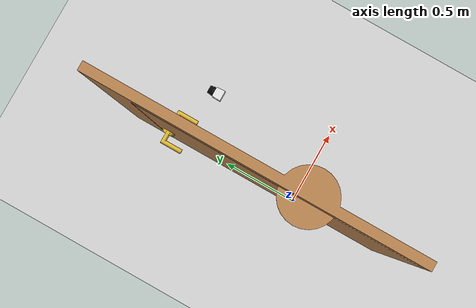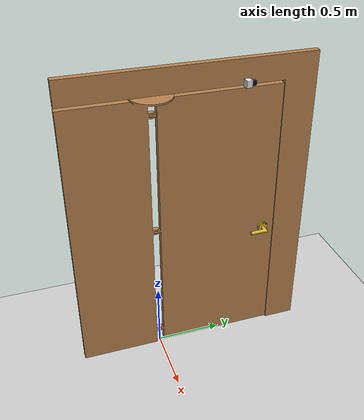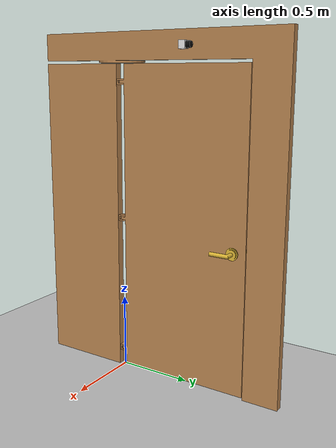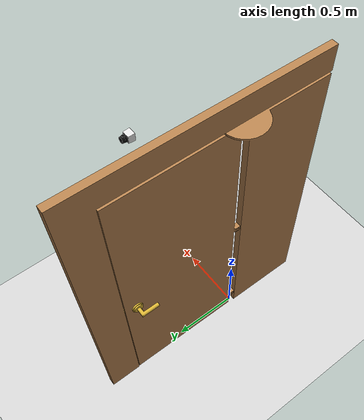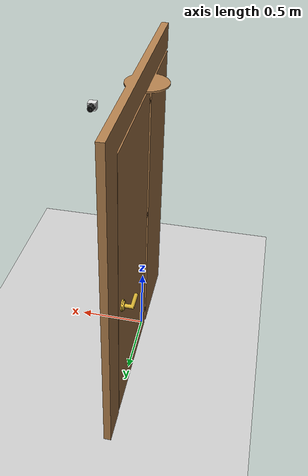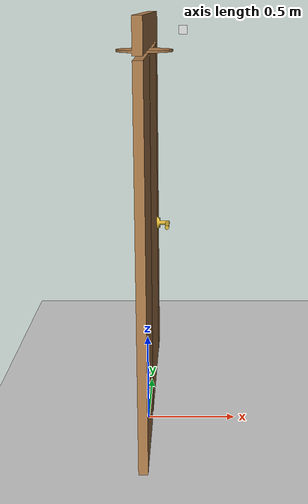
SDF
<?xml version="1.0" ?>
<sdf version="1.4">
  <world name="simple">
    <physics type="ode">
      <gravity>0 0 -9.81</gravity>
      <ode>
        <solver>
          <type>quick</type>
          <iters>200</iters>
          <sor>1.4</sor>
        </solver>
        <constraints>
          <cfm>0.0</cfm>
          <erp>0.2</erp>
          <contact_max_correcting_vel>100.0</contact_max_correcting_vel>
          <contact_surface_layer>0.0</contact_surface_layer>
        </constraints>
      </ode>
      <real_time_update_rate>1500</real_time_update_rate>
      <max_step_size>0.0005</max_step_size>
    </physics>
    <!-- A global light source -->
    <include>
      <uri>model://sun</uri>
    </include>
    <!-- A ground plane -->
    <include>
      <uri>model://ground_plane</uri>
    </include>
    <!-- A door -->
    <include>
      <uri>model://door_simple</uri>
        <plugin name="simple_door_config" filename="./libsimple_door_config.so"/>
    </include>

  </world>
</sdf>

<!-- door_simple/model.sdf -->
<sdf version='1.4'>
  <model name="door_simple">
    <self_collide>true</self_collide>
    <static>false</static>
    <pose>0 0 0 0 0 0</pose>

    <link name="frame">

      <inertial>
        <mass>100.0</mass>
        <inertia>
          <ixx>0.013102127690</ixx>   <ixy>-0.000000514790</ixy>    <ixz>0.000000965200</ixz>
                                      <iyy>0.017339000240</iyy>     <iyz>-0.000017996010</iyz>
                                                                    <izz>0.004334337460</izz>
        </inertia>
      </inertial>

      <collision name="frame_collision">
        <geometry>
          <mesh>
            <uri>model://door_simple/meshes/frame.stl</uri>
          </mesh>
        </geometry>
      </collision>

      <visual name="frame_visual">
        <geometry>
          <mesh>
            <uri>model://door_simple/meshes/frame.stl</uri>
          </mesh>
        </geometry>
        <material>
          <script>
            <uri>file://media/materials/scripts/gazebo.material</uri>
            <name>Gazebo/WoodPallet</name>
          </script>
        </material>
      </visual>

    </link>

    <link name="door">

      <inertial>
        <mass>10.0</mass>
        <inertia>
          <ixx>0.030386862790</ixx>   <ixy>-0.000000000330</ixy>    <ixz>0.000000216760</ixz>
                                      <iyy>0.035534743650</iyy>     <iyz>-0.000000000060</iyz>
                                                                    <izz>0.005184277950</izz>
        </inertia>
      </inertial>

      <collision name="door_collision">
        <geometry>
          <mesh>
            <uri>model://door_simple/meshes/door.stl</uri>
          </mesh>
        </geometry>
      </collision>

      <visual name="door_visual">
        <geometry>
          <mesh>
            <uri>model://door_simple/meshes/door.stl</uri>
          </mesh>
        </geometry>
        <material>
          <script>
            <uri>file://media/materials/scripts/gazebo.material</uri>
            <name>Gazebo/Wood</name>
          </script>
        </material>
      </visual>

    </link>

    <link name="lever">
      <pose> 0 0.84 0.9552 0 -1.5708 0</pose>
      <inertial>
        <mass>1.0</mass>
        <inertia>
          <ixx>0.001</ixx>   <ixy>0.00</ixy>      <ixz>0.00</ixz>
                             <iyy>0.001</iyy>     <iyz>0.00</iyz>
                                                  <izz>0.001</izz>
        </inertia>
      </inertial>

      <collision name="lever_collision">
        <geometry>
          <mesh>
            <uri>model://door_simple/meshes/lever.stl</uri>
          </mesh>
        </geometry>
      </collision>

      <visual name="lever_visual">
        <geometry>
          <mesh>
            <uri>model://door_simple/meshes/lever.stl</uri>
          </mesh>
        </geometry>
        <material>
          <script>
            <uri>file://media/materials/scripts/gazebo.material</uri>
            <name>Gazebo/Gold</name>
          </script>
        </material>
      </visual>

    </link>

    <joint type="fixed" name="joint_world_frame">
      <pose>0 0 0 0 0 0</pose>
      <parent>world</parent>
      <child>frame</child>
      <physics>
        <ode>
          <implicit_spring_damper>1</implicit_spring_damper>
        </ode>
      </physics>
    </joint>

    <joint type="revolute" name="joint_frame_door">
      <pose>0 0 0 0 0 0</pose>
      <parent>frame</parent>
      <child>door</child>
      <axis>
        <xyz>0 0 1</xyz>
        <!--  self-closing hinge -->
        <limit>
          <lower>-0.03</lower>
          <upper>1.57</upper>
        </limit>
      </axis>
      <physics>
        <ode>
          <implicit_spring_damper>1</implicit_spring_damper>
        </ode>
      </physics>
    </joint>

    <joint type="revolute" name="joint_door_lever">
      <pose>0 0 0 0 0 0</pose>
      <parent>door</parent>
      <child>lever</child>
      <axis>
        <xyz>1 0 0</xyz>
        <dynamics>
          <damping>0.5</damping>
          <friction>0.01</friction>
          <spring_reference>0.0</spring_reference>
          <spring_stiffness>3</spring_stiffness>
        </dynamics>
        <limit>
          <lower>0.0</lower>
          <upper>0.6</upper>
        </limit>
      </axis>
      <physics>
        <ode>
          <implicit_spring_damper>1</implicit_spring_damper>
        </ode>
      </physics>
    </joint>
  <plugin name="simple_door_config" filename="libsimple_door_config.so"/>

   <include>
      <uri>model://distance_sensor_custom</uri>
      <pose>0.2 0.6 2.2 0 1.57 1.57</pose>
    </include>

  </model>
</sdf>

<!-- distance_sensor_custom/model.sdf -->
<sdf version="1.5">
  <model name="distance">
    <pose>0 0 0.035 0 0 0</pose>
    <link name="link">
      <inertial>
        <mass>0.1</mass>
      </inertial>
      <visual name="visual">
        <geometry>
          <mesh>
            <uri>model://hokuyo/meshes/hokuyo.dae</uri>
          </mesh>
        </geometry>
      </visual>

    </link>
  </model>
</sdf>
